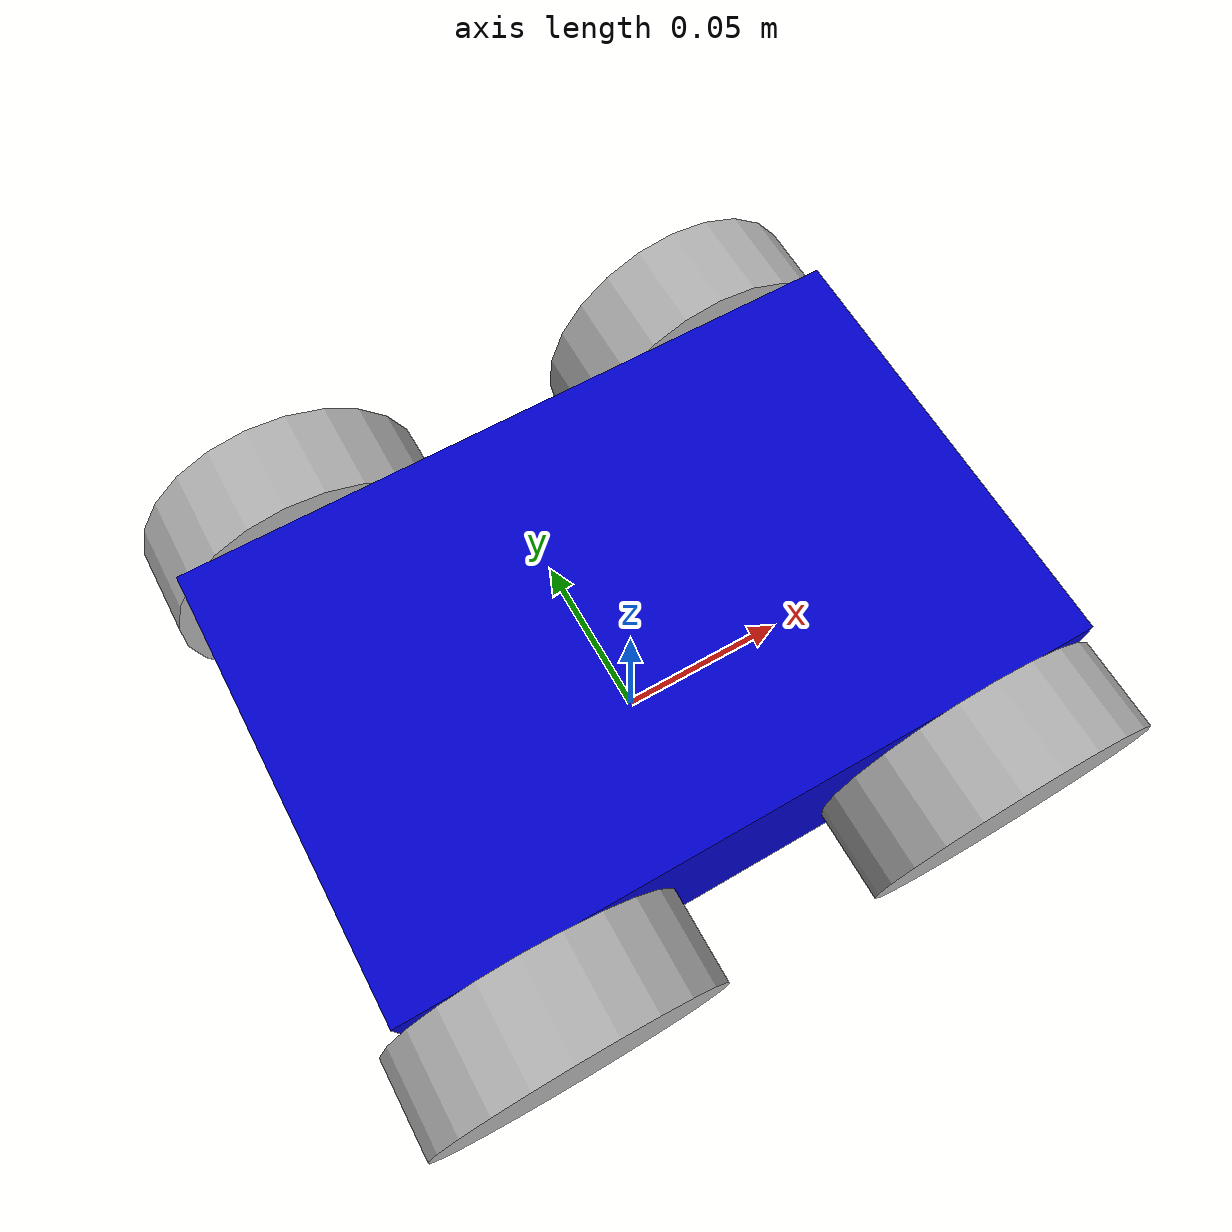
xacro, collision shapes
<?xml version="1.0"?>
<robot name="razbot" xmlns:xacro="http://ros.org/wiki/xacro">

  <!-- Include wheel macro -->
  <xacro:include filename="$(find razbot_description)/urdf/wheel.urdf.xacro" />

  <xacro:property name="M_PI" value="3.14159"/>
  <!-- Base Size -->
  <xacro:property name="base_length" value="0.184" />
  <xacro:property name="base_width" value="0.120" />
  <xacro:property name="base_height" value="0.068" />

  <!-- Wheel Properties -->
  <xacro:property name="wheel_base" value="0.123" />
  <xacro:property name="wheel_track" value="0.146" />
  <xacro:property name="wheel_vertical_offset" value="0" />
  <xacro:property name="wheel_width" value="0.025" />
  <xacro:property name="wheel_radius" value="0.040" />

  <!-- Calculated Properties -->
  <xacro:property name="base_vertical_offset" value="${wheel_radius-wheel_vertical_offset}" />

  <material name="Blue">
    <color rgba="0.0 0.0 0.8 1.0"/>
  </material>
  <material name="Grey">
    <color rgba="0.7 0.7 0.7 1.0"/>
  </material>

  <!-- Some links don't have visual properties, and exist for convenience -->
  <!-- Footprint link, always on floor -->
  <link name="base_footprint"/>

  <!-- Joints connect separate links together. Fixed joints do not move -->
  <!-- Footprint to base joint -->
  <joint name="footprint_joint" type="fixed">
    <origin xyz="0 0 ${base_vertical_offset}" rpy="0 0 0" />
    <parent link="base_footprint" />
    <child link="base_link" />
  </joint>

  <!-- Base link, represents center of mass for the robot -->
  <link name="base_link">

    <visual>
      <origin xyz="0 0 0" rpy="0 0 0" />
      <geometry>
        <mesh filename="package://razbot_description/meshes/base.stl" />
      </geometry>
      <material name="Blue" />
    </visual>

    <collision>
      <origin xyz="0 0 0" rpy="0 0 0" />
      <geometry>
        <box size="${base_length} ${base_width} ${base_height}"/>
      </geometry>
    </collision>

    <inertial>
      <origin xyz="0 0 0" />
      <mass value="0.857" /> <!-- mass in kg -->
      <inertia  ixx="2.17" ixy="0" ixz="0"
                iyy="3.09" iyz="0"
                izz="4.76" /> <!-- inertia around each axis pair -->
    </inertial>

  </link>

  <gazebo reference="base_link">
    <material>Gazebo/Blue</material>
  </gazebo>

  <!-- Gazebo plugin for ROS Control -->
  <gazebo>
    <plugin name="gazebo_ros_control" filename="libgazebo_ros_control.so">
      <robotNamespace>/</robotNamespace>
    </plugin>
  </gazebo>

  <!-- Additional plugins, like an IMU sensor, can be loaded here -->
  <gazebo>
    <plugin name="imu_controller" filename="libhector_gazebo_ros_imu.so">
      <robotNamespace>/</robotNamespace>
      <updateRate>50.0</updateRate>
      <bodyName>base_link</bodyName>
      <topicName>imu/data</topicName>
      <accelDrift>0.005 0.005 0.005</accelDrift>
      <accelGaussianNoise>0.005 0.005 0.005</accelGaussianNoise>
      <rateDrift>0.005 0.005 0.005 </rateDrift>
      <rateGaussianNoise>0.005 0.005 0.005 </rateGaussianNoise>
      <headingDrift>0.005</headingDrift>
      <headingGaussianNoise>0.005</headingGaussianNoise>
    </plugin>
  </gazebo>

  <!-- Xacro is an XML macro language that allows us to save effort when creating similar
  XML blocks. Here, we create four wheels from the macro contained in the urdf/wheel.urdf.xacro
  file -->
  <!-- Create wheels from macro -->
  <xacro:razbot_wheel wheel_prefix="front_left" flip="-1">
    <origin xyz="${wheel_base/2} ${wheel_track/2} ${wheel_vertical_offset}" rpy="0 0 0" />
  </xacro:razbot_wheel>
  <xacro:razbot_wheel wheel_prefix="front_right" flip="1">
    <origin xyz="${wheel_base/2} ${-wheel_track/2} ${wheel_vertical_offset}" rpy="0 0 0" />
  </xacro:razbot_wheel>
  <xacro:razbot_wheel wheel_prefix="rear_left" flip="-1">
    <origin xyz="${-wheel_base/2} ${wheel_track/2} ${wheel_vertical_offset}" rpy="0 0 0" />
  </xacro:razbot_wheel>
  <xacro:razbot_wheel wheel_prefix="rear_right" flip="1">
    <origin xyz="${-wheel_base/2} ${-wheel_track/2} ${wheel_vertical_offset}" rpy="0 0 0" />
  </xacro:razbot_wheel>

</robot>

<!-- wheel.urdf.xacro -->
<robot name="razbot" xmlns:xacro="http://ros.org/wiki/xacro">

  <xacro:macro name="razbot_wheel" params="wheel_prefix flip *joint_pose">

    <!-- Wheel link -->
    <link name="${wheel_prefix}_wheel_link">

      <visual>
        <!-- math-magic to get the wheel STLs to align -->
        <origin xyz="${flip*wheel_radius} ${-flip*wheel_width/2} ${-wheel_radius}" rpy="${M_PI/2} 0 ${flip*M_PI/2+M_PI/2}" />
        <geometry>
          <mesh filename="package://razbot_description/meshes/wheel.stl" />
        </geometry>
        <material name="Grey" />
      </visual>

      <collision>
        <origin xyz="0 0 0" rpy="${M_PI/2} 0 0" />
        <geometry>
          <cylinder length="${wheel_width}" radius="${wheel_radius}" />
        </geometry>
      </collision>

      <inertial>
        <origin xyz="0 0.1 0"/>
        <mass value="0.15" />
        <inertia  ixx="0.0001" ixy="0" ixz="0"
                  iyy="0.0001" iyz="0"
                  izz="0.0001" />
      </inertial>

    </link>

    <!-- This block provides the simulator (Gazebo) with information on a few additional
    physical properties. See http://gazebosim.org/tutorials/?tut=ros_urdf for more-->
    <gazebo reference="${wheel_prefix}_wheel_link">
      <mu1 value="200.0"/>
      <mu2 value="100.0"/>
      <kp value="10000000.0" />
      <kd value="1.0" />
      <material>Gazebo/Grey</material>
    </gazebo>

    <!-- This block connects the wheel joint to an actuator (motor), which informs both
    simulation and visualization of the robot -->
    <transmission name="${wheel_prefix}_wheel_trans" type="SimpleTransmission">
      <type>transmission_interface/SimpleTransmission</type>
      <actuator name="${wheel_prefix}_wheel_motor">
        <mechanicalReduction>1</mechanicalReduction>
      </actuator>
      <joint name="${wheel_prefix}_wheel">
        <hardwareInterface>VelocityJointInterface</hardwareInterface>
      </joint>
    </transmission>

    <!-- Wheel to base joint. This joint is continuous so that the wheel can
    spin freely -->
    <joint name="${wheel_prefix}_wheel" type="continuous">
      <parent link="base_link"/>
      <child link="${wheel_prefix}_wheel_link"/>
      <xacro:insert_block name="joint_pose"/>
      <axis xyz="0 1 0" rpy="0 0 0" />
    </joint>

  </xacro:macro>
</robot>
